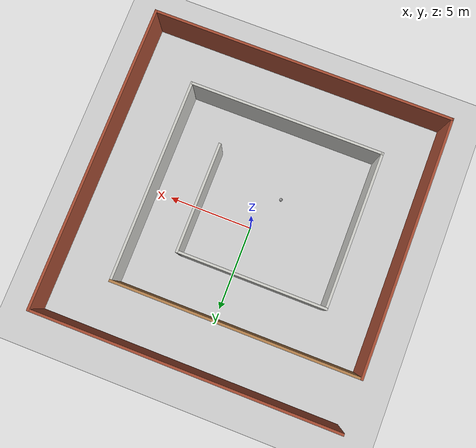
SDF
<sdf version="1.6">
 <world name="default">
  <plugin name="hi_robot" filename="libhi_robot.so"/>
  <light name="sun" type="directional">
   <pose>0 0 10 0 -0 0</pose>
   <diffuse>0.8 0.8 0.8 1</diffuse>
   <specular>0.2 0.2 0.2 1</specular>
   <attenuation>
    <range>1000</range>
    <constant>0.9</constant>
    <linear>0.01</linear>
    <quadratic>0.001</quadratic>
   </attenuation>
   <direction>-0.5 0.1 -0.9</direction>
  </light>
  <model name="ground_plane">
   <static>1</static>
   <link name="link">
    <collision name="collision">
     <geometry><plane><normal>0 0 1</normal><size>100 100</size></plane></geometry>
     <surface>
      <contact><collide_bitmask>65535</collide_bitmask></contact>
      <friction><ode><mu>100</mu><mu2>50</mu2></ode></friction>
     </surface>
    </collision>
    <visual name="visual">
     <cast_shadows>0</cast_shadows>
     <geometry><plane><normal>0 0 1</normal><size>100 100</size></plane></geometry>
     <material>
      <script><uri>file://media/materials/scripts/gazebo.material</uri><name>Gazebo/Grey</name></script>
     </material>
    </visual>
   </link>
  </model>
  <gravity>0 0 -9.8</gravity>
  <magnetic_field>6e-06 2.3e-05 -4.2e-05</magnetic_field>
  <atmosphere type="adiabatic"/>
  <physics name="default_physics" default="0" type="ode">
   <max_step_size>0.001</max_step_size>
   <real_time_factor>1</real_time_factor>
   <real_time_update_rate>1000</real_time_update_rate>
  </physics>
  <scene><ambient>0.4 0.4 0.4 1</ambient><background>0.7 0.7 0.7 1</background><shadows>1</shadows></scene>
  <audio><device>default</device></audio>
  <spherical_coordinates>
   <surface_model>EARTH_WGS84</surface_model>
   <latitude_deg>0</latitude_deg>
   <longitude_deg>0</longitude_deg>
   <elevation>0</elevation>
   <heading_deg>0</heading_deg>
  </spherical_coordinates>
  <model name="myhouse_0">
   <pose>0.51612 -0.40662 0 0 -0 0</pose>
   <link name="Wall_11">
    <collision name="Wall_11_Collision">
     <geometry><box><size>11.5 0.15 2.5</size></box></geometry>
     <pose>0 0 1.25 0 -0 0</pose>
    </collision>
    <visual name="Wall_11_Visual">
     <pose>0 0 1.25 0 -0 0</pose>
     <geometry><box><size>11.5 0.15 2.5</size></box></geometry>
     <material>
      <script><uri>file://media/materials/scripts/gazebo.material</uri><name>Gazebo/CeilingTiled</name></script>
      <ambient>1 1 1 1</ambient>
     </material>
     <meta><layer>0</layer></meta>
    </visual>
    <pose>-0.25 -5.8 0 0 -0 3.14159</pose>
   </link>
   <link name="Wall_12">
    <collision name="Wall_12_Collision">
     <geometry><box><size>9.25 0.15 2.5</size></box></geometry>
     <pose>0 0 1.25 0 -0 0</pose>
    </collision>
    <visual name="Wall_12_Visual">
     <pose>0 0 1.25 0 -0 0</pose>
     <geometry><box><size>9.25 0.15 2.5</size></box></geometry>
     <material>
      <script><uri>file://media/materials/scripts/gazebo.material</uri><name>Gazebo/CeilingTiled</name></script>
      <ambient>1 1 1 1</ambient>
     </material>
     <meta><layer>0</layer></meta>
    </visual>
    <pose>-5.925 -1.25 0 0 -0 1.5708</pose>
   </link>
   <link name="Wall_13">
    <collision name="Wall_13_Collision">
     <geometry><box><size>8.75 0.15 2.5</size></box></geometry>
     <pose>0 0 1.25 0 -0 0</pose>
    </collision>
    <visual name="Wall_13_Visual">
     <pose>0 0 1.25 0 -0 0</pose>
     <geometry><box><size>8.75 0.15 2.5</size></box></geometry>
     <material>
      <script><uri>file://media/materials/scripts/gazebo.material</uri><name>Gazebo/CeilingTiled</name></script>
      <ambient>1 1 1 1</ambient>
     </material>
     <meta><layer>0</layer></meta>
    </visual>
    <pose>-1.625 3.3 0 0 -0 0</pose>
   </link>
   <link name="Wall_14">
    <collision name="Wall_14_Collision">
     <geometry><box><size>6.5 0.15 2.5</size></box></geometry>
     <pose>0 0 1.25 0 -0 0</pose>
    </collision>
    <visual name="Wall_14_Visual">
     <pose>0 0 1.25 0 -0 0</pose>
     <geometry><box><size>6.5 0.15 2.5</size></box></geometry>
     <material>
      <script><uri>file://media/materials/scripts/gazebo.material</uri><name>Gazebo/CeilingTiled</name></script>
      <ambient>1 1 1 1</ambient>
     </material>
     <meta><layer>0</layer></meta>
    </visual>
    <pose>2.675 0.125 0 0 -0 -1.5708</pose>
   </link>
   <link name="Wall_3">
    <collision name="Wall_3_Collision">
     <geometry><box><size>18 0.15 2.5</size></box></geometry>
     <pose>0 0 1.25 0 -0 0</pose>
    </collision>
    <visual name="Wall_3_Visual">
     <pose>0 0 1.25 0 -0 0</pose>
     <geometry><box><size>18 0.15 2.5</size></box></geometry>
     <material>
      <script><uri>file://media/materials/scripts/gazebo.material</uri><name>Gazebo/Bricks</name></script>
      <ambient>1 1 1 1</ambient>
     </material>
     <meta><layer>0</layer></meta>
    </visual>
    <pose>0 9.05 0 0 -0 0</pose>
   </link>
   <link name="Wall_5">
    <collision name="Wall_5_Collision">
     <geometry><box><size>18.25 0.15 2.5</size></box></geometry>
     <pose>0 0 1.25 0 -0 0</pose>
    </collision>
    <visual name="Wall_5_Visual">
     <pose>0 0 1.25 0 -0 0</pose>
     <geometry><box><size>18.25 0.15 2.5</size></box></geometry>
     <material>
      <script><uri>file://media/materials/scripts/gazebo.material</uri><name>Gazebo/Bricks</name></script>
      <ambient>1 1 1 1</ambient>
     </material>
     <meta><layer>0</layer></meta>
    </visual>
    <pose>8.925 0 0 0 -0 -1.5708</pose>
   </link>
   <link name="Wall_6">
    <collision name="Wall_6_Collision">
     <geometry><box><size>18 0.15 2.5</size></box></geometry>
     <pose>0 0 1.25 0 -0 0</pose>
    </collision>
    <visual name="Wall_6_Visual">
     <pose>0 0 1.25 0 -0 0</pose>
     <geometry><box><size>18 0.15 2.5</size></box></geometry>
     <material>
      <script><uri>file://media/materials/scripts/gazebo.material</uri><name>Gazebo/Bricks</name></script>
      <ambient>1 1 1 1</ambient>
     </material>
     <meta><layer>0</layer></meta>
    </visual>
    <pose>0 -9.05 0 0 -0 3.14159</pose>
   </link>
   <link name="Wall_7">
    <collision name="Wall_7_Collision">
     <geometry><box><size>15.25 0.15 2.5</size></box></geometry>
     <pose>0 0 1.25 0 -0 0</pose>
    </collision>
    <visual name="Wall_7_Visual">
     <pose>0 0 1.25 0 -0 0</pose>
     <geometry><box><size>15.25 0.15 2.5</size></box></geometry>
     <material>
      <script><uri>file://media/materials/scripts/gazebo.material</uri><name>Gazebo/Bricks</name></script>
      <ambient>1 1 1 1</ambient>
     </material>
     <meta><layer>0</layer></meta>
    </visual>
    <pose>-8.925 -1.5 0 0 -0 1.5708</pose>
   </link>
   <link name="Wall_8">
    <collision name="Wall_8_Collision">
     <geometry><box><size>14.5 0.15 2.5</size></box></geometry>
     <pose>0 0 1.25 0 -0 0</pose>
    </collision>
    <visual name="Wall_8_Visual">
     <pose>0 0 1.25 0 -0 0</pose>
     <geometry><box><size>14.5 0.15 2.5</size></box></geometry>
     <material>
      <script><uri>file://media/materials/scripts/gazebo.material</uri><name>Gazebo/Wood</name></script>
      <ambient>1 1 1 1</ambient>
     </material>
     <meta><layer>0</layer></meta>
    </visual>
    <pose>-1.75 6.05 0 0 -0 0</pose>
   </link>
   <link name="Wall_9">
    <collision name="Wall_9_Collision">
     <geometry><box><size>12 0.15 2.5</size></box></geometry>
     <pose>0 0 1.25 0 -0 0</pose>
    </collision>
    <visual name="Wall_9_Visual">
     <pose>0 0 1.25 0 -0 0</pose>
     <geometry><box><size>12 0.15 2.5</size></box></geometry>
     <material>
      <script><uri>file://media/materials/scripts/gazebo.material</uri><name>Gazebo/CeilingTiled</name></script>
      <ambient>1 1 1 1</ambient>
     </material>
     <meta><layer>0</layer></meta>
    </visual>
    <pose>5.425 0.125 0 0 -0 -1.5708</pose>
   </link>
   <static>1</static>
  </model>
  <model name="my_ball">
   <link name="link_0">
    <inertial>
     <mass>1</mass>
     <inertia><ixx>0.1</ixx><ixy>0</ixy><ixz>0</ixz><iyy>0.1</iyy><iyz>0</iyz><izz>0.1</izz></inertia>
    </inertial>
    <visual name="visual">
     <geometry><sphere><radius>0.1</radius></sphere></geometry>
     <material>
      <lighting>1</lighting>
      <script><uri>file://media/materials/scripts/gazebo.material</uri><name>Gazebo/Grey</name></script>
      <shader type="pixel"><normal_map>__default__</normal_map></shader>
      <ambient>1 1 1 1</ambient>
      <diffuse>1 1 1 1</diffuse>
      <specular>1 1 1 1</specular>
      <emissive>1 1 1 1</emissive>
     </material>
    </visual>
    <collision name="collision">
     <geometry><sphere><radius>0.1</radius></sphere></geometry>
     <surface>
      <friction>
       <ode><mu>1</mu><mu2>1</mu2><fdir1>0 0 0</fdir1><slip1>0</slip1><slip2>0</slip2></ode>
       <torsional>
        <coefficient>1</coefficient>
        <patch_radius>0</patch_radius>
        <surface_radius>0</surface_radius>
        <use_patch_radius>1</use_patch_radius>
        <ode><slip>0</slip></ode>
       </torsional>
      </friction>
      <bounce><restitution_coefficient>0</restitution_coefficient><threshold>1e+06</threshold></bounce>
      <contact>
       <collide_without_contact>0</collide_without_contact>
       <collide_without_contact_bitmask>1</collide_without_contact_bitmask>
       <collide_bitmask>1</collide_bitmask>
       <ode>
        <soft_cfm>0</soft_cfm>
        <soft_erp>0.2</soft_erp>
        <kp>1e+13</kp>
        <kd>1</kd>
        <max_vel>0.01</max_vel>
        <min_depth>0</min_depth>
       </ode>
       <bullet>
        <split_impulse>1</split_impulse>
        <split_impulse_penetration_threshold>-0.01</split_impulse_penetration_threshold>
        <soft_cfm>0</soft_cfm>
        <soft_erp>0.2</soft_erp>
        <kp>1e+13</kp>
        <kd>1</kd>
       </bullet>
      </contact>
     </surface>
    </collision>
   </link>
   <static>0</static>
   <pose>-1.06837 -2.19252 0.1 0 -0 0</pose>
  </model>
 </world>
</sdf>
